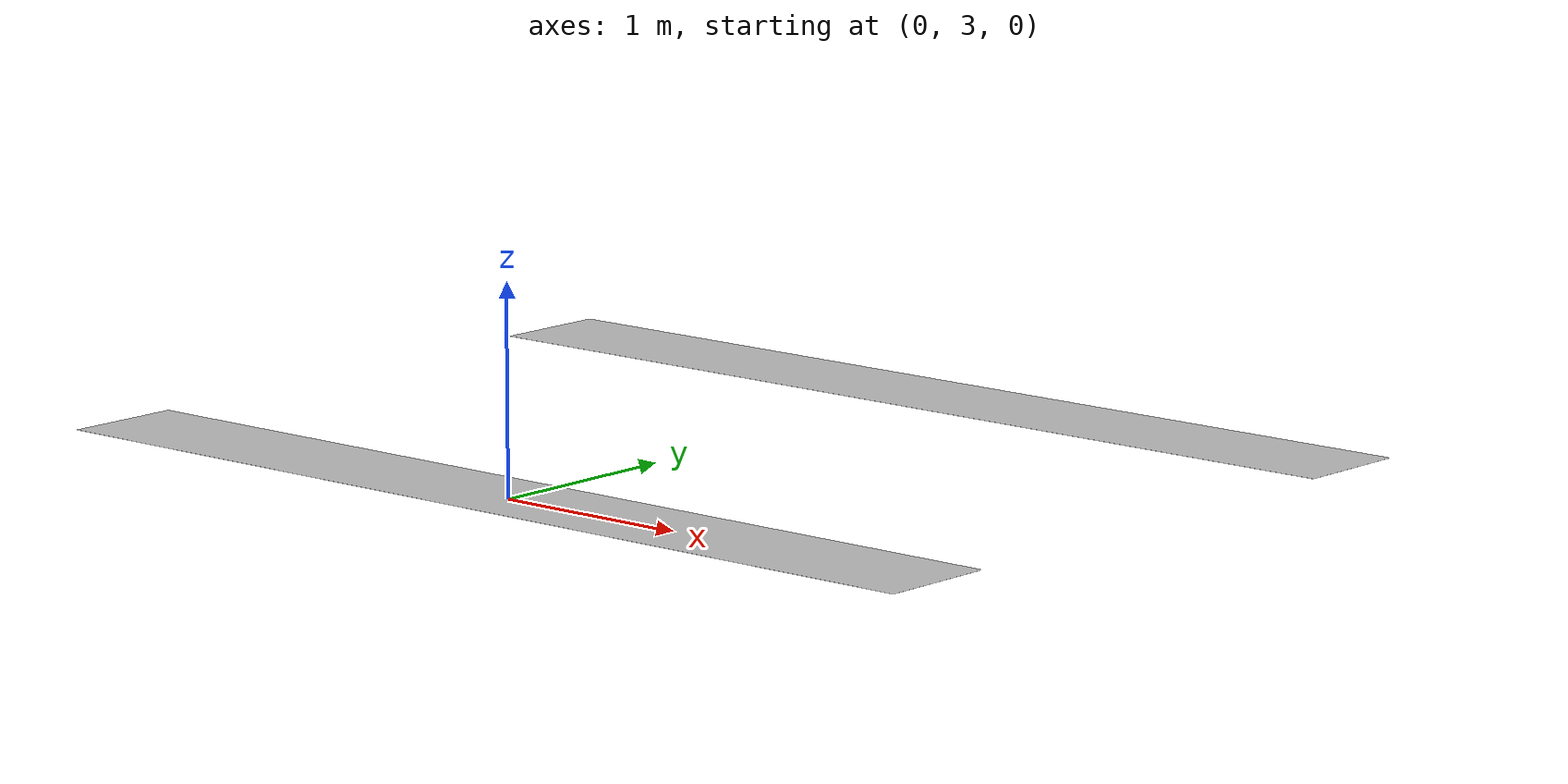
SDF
<?xml version="1.0"?>
<sdf version="1.4">
  <model name="cmp9767m_cropweed">
  <static>true</static>
    <link name="simple">
      <pose frame=''>0 0 0 0 0 0</pose>
      <collision name="collision">
        <geometry>
          <plane>
            <normal>0 0 1</normal>
            <size>5.04 0.6</size>
          </plane>
        </geometry>
        <surface>
          <friction>
            <ode>
              <mu>100</mu>
              <mu2>50</mu2>
            </ode>
          </friction>
        </surface>
      </collision>
      <visual name="visual">
	     <pose>0 0 0.01 0 0 0</pose>
        <cast_shadows>false</cast_shadows>
        <geometry>
          <plane>
            <normal>0 0 1</normal>
            <size>5.04 0.6</size>
          </plane>
        </geometry>
        <material>
          <script>
            <uri>model://cmp9767m_cropweed/materials/scripts</uri>
            <uri>model://cmp9767m_cropweed/materials/textures</uri>
            <name>cmp9767m_cropweed/simple</name>
          </script>
        </material>
      </visual>
    </link>
    <link name="realeasy">
      <pose frame=''>0 3 0 0 0 0</pose>
      <collision name="collision">
        <geometry>
          <plane>
            <normal>0 0 1</normal>
            <size>5.04 0.6</size>
          </plane>
        </geometry>
        <surface>
          <friction>
            <ode>
              <mu>100</mu>
              <mu2>50</mu2>
            </ode>
          </friction>
        </surface>
      </collision>
      <visual name="visual">
	     <pose>0 0 0.01 0 0 0</pose>
        <cast_shadows>false</cast_shadows>
        <geometry>
          <plane>
            <normal>0 0 1</normal>
            <size>5.04 0.6</size>
          </plane>
        </geometry>
        <material>
          <script>
            <uri>model://cmp9767m_cropweed/materials/scripts</uri>
            <uri>model://cmp9767m_cropweed/materials/textures</uri>
            <name>cmp9767m_cropweed/realeasy</name>
          </script>
        </material>
      </visual>
    </link>
    <link name="realhard">
      <pose frame=''>0 6 0 0 0 0</pose>
      <collision name="collision">
        <geometry>
          <plane>
            <normal>0 0 1</normal>
            <size>5.04 0.6</size>
          </plane>
        </geometry>
        <surface>
          <friction>
            <ode>
              <mu>100</mu>
              <mu2>50</mu2>
            </ode>
          </friction>
        </surface>
      </collision>
      <visual name="visual">
	     <pose>0 0 0.01 0 0 0</pose>
        <cast_shadows>false</cast_shadows>
        <geometry>
          <plane>
            <normal>0 0 1</normal>
            <size>5.04 0.6</size>
          </plane>
        </geometry>
        <material>
          <script>
            <uri>model://cmp9767m_cropweed/materials/scripts</uri>
            <uri>model://cmp9767m_cropweed/materials/textures</uri>
            <name>cmp9767m_cropweed/realhard</name>
          </script>
        </material>
      </visual>
    </link>

  </model>
</sdf>
